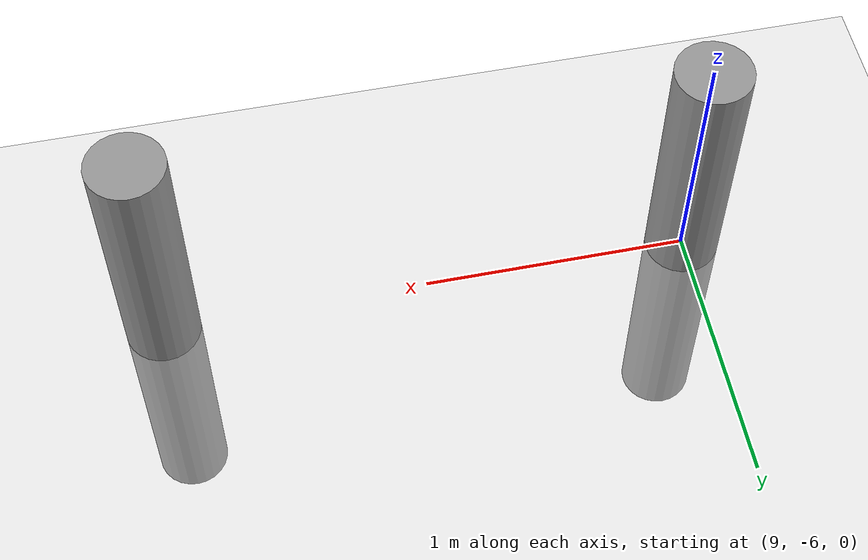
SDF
<sdf version="1.6">
 <world name="default">
  <model name="ground_plane">
   <static>1</static>
   <link name="link">
    <collision name="collision">
     <geometry><plane><normal>0 0 1</normal><size>100 100</size></plane></geometry>
     <surface><friction><ode><mu>100</mu><mu2>50</mu2></ode></friction></surface>
    </collision>
    <visual name="visual">
     <cast_shadows>0</cast_shadows>
     <geometry><plane><normal>0 0 1</normal><size>100 100</size></plane></geometry>
     <material>
      <script><uri>file://media/materials/scripts/gazebo.material</uri><name>Gazebo/Grey</name></script>
     </material>
    </visual>
   </link>
  </model>
  <model name="my_cylinder014_clone_45">
   <pose>11 -6 0 0 -0 0</pose>
   <link name="my_cylinder014::link">
    <inertial>
     <mass>1</mass>
     <inertia><ixx>0.145833</ixx><ixy>0</ixy><ixz>0</ixz><iyy>0.145833</iyy><iyz>0</iyz><izz>0.125</izz></inertia>
    </inertial>
    <visual name="visual">
     <geometry><cylinder><radius>0.14</radius><length>2</length></cylinder></geometry>
     <material>
      <script><name>Gazebo/Grey</name><uri>file://media/materials/scripts/gazebo.material</uri></script>
      <ambient>0.3 0.3 0.3 1</ambient>
      <diffuse>0.7 0.7 0.7 1</diffuse>
      <specular>1 0.01 0.01 1</specular>
      <emissive>0 0 0 1</emissive>
      <shader type="vertex"><normal_map>__default__</normal_map></shader>
     </material>
    </visual>
    <collision name="collision">
     <geometry><cylinder><radius>0.14</radius><length>2</length></cylinder></geometry>
     <surface>
      <friction>
       <ode><mu>1</mu><mu2>1</mu2><fdir1>0 0 0</fdir1><slip1>0</slip1><slip2>0</slip2></ode>
       <torsional>
        <coefficient>1</coefficient>
        <patch_radius>0</patch_radius>
        <surface_radius>0</surface_radius>
        <use_patch_radius>1</use_patch_radius>
        <ode><slip>0</slip></ode>
       </torsional>
      </friction>
      <bounce><restitution_coefficient>0</restitution_coefficient><threshold>1e+06</threshold></bounce>
      <contact>
       <collide_without_contact>0</collide_without_contact>
       <collide_without_contact_bitmask>1</collide_without_contact_bitmask>
       <collide_bitmask>1</collide_bitmask>
       <ode>
        <soft_cfm>0</soft_cfm>
        <soft_erp>0.2</soft_erp>
        <kp>1e+13</kp>
        <kd>1</kd>
        <max_vel>0.01</max_vel>
        <min_depth>0</min_depth>
       </ode>
       <bullet>
        <split_impulse>1</split_impulse>
        <split_impulse_penetration_threshold>-0.01</split_impulse_penetration_threshold>
        <soft_cfm>0</soft_cfm>
        <soft_erp>0.2</soft_erp>
        <kp>1e+13</kp>
        <kd>1</kd>
       </bullet>
      </contact>
     </surface>
    </collision>
   </link>
   <static>1</static>
  </model>
  <model name="my_cylinder014_clone_44">
   <pose>9 -6 0 0 -0 0</pose>
   <link name="my_cylinder014::link">
    <inertial>
     <mass>1</mass>
     <inertia><ixx>0.145833</ixx><ixy>0</ixy><ixz>0</ixz><iyy>0.145833</iyy><iyz>0</iyz><izz>0.125</izz></inertia>
    </inertial>
    <visual name="visual">
     <geometry><cylinder><radius>0.14</radius><length>2</length></cylinder></geometry>
     <material>
      <script><name>Gazebo/Grey</name><uri>file://media/materials/scripts/gazebo.material</uri></script>
      <ambient>0.3 0.3 0.3 1</ambient>
      <diffuse>0.7 0.7 0.7 1</diffuse>
      <specular>1 0.01 0.01 1</specular>
      <emissive>0 0 0 1</emissive>
      <shader type="vertex"><normal_map>__default__</normal_map></shader>
     </material>
    </visual>
    <collision name="collision">
     <geometry><cylinder><radius>0.14</radius><length>2</length></cylinder></geometry>
     <surface>
      <friction>
       <ode><mu>1</mu><mu2>1</mu2><fdir1>0 0 0</fdir1><slip1>0</slip1><slip2>0</slip2></ode>
       <torsional>
        <coefficient>1</coefficient>
        <patch_radius>0</patch_radius>
        <surface_radius>0</surface_radius>
        <use_patch_radius>1</use_patch_radius>
        <ode><slip>0</slip></ode>
       </torsional>
      </friction>
      <bounce><restitution_coefficient>0</restitution_coefficient><threshold>1e+06</threshold></bounce>
      <contact>
       <collide_without_contact>0</collide_without_contact>
       <collide_without_contact_bitmask>1</collide_without_contact_bitmask>
       <collide_bitmask>1</collide_bitmask>
       <ode>
        <soft_cfm>0</soft_cfm>
        <soft_erp>0.2</soft_erp>
        <kp>1e+13</kp>
        <kd>1</kd>
        <max_vel>0.01</max_vel>
        <min_depth>0</min_depth>
       </ode>
       <bullet>
        <split_impulse>1</split_impulse>
        <split_impulse_penetration_threshold>-0.01</split_impulse_penetration_threshold>
        <soft_cfm>0</soft_cfm>
        <soft_erp>0.2</soft_erp>
        <kp>1e+13</kp>
        <kd>1</kd>
       </bullet>
      </contact>
     </surface>
    </collision>
   </link>
   <static>1</static>
  </model>
  <model name="my_cylinder014_clone_44">
   <pose>9 -6 0 0 -0 0</pose>
   <link name="my_cylinder014::link">
    <inertial>
     <mass>1</mass>
     <inertia><ixx>0.145833</ixx><ixy>0</ixy><ixz>0</ixz><iyy>0.145833</iyy><iyz>0</iyz><izz>0.125</izz></inertia>
    </inertial>
    <visual name="visual">
     <geometry><cylinder><radius>0.14</radius><length>2</length></cylinder></geometry>
     <material>
      <script><name>Gazebo/Grey</name><uri>file://media/materials/scripts/gazebo.material</uri></script>
      <ambient>0.3 0.3 0.3 1</ambient>
      <diffuse>0.7 0.7 0.7 1</diffuse>
      <specular>1 0.01 0.01 1</specular>
      <emissive>0 0 0 1</emissive>
      <shader type="vertex"><normal_map>__default__</normal_map></shader>
     </material>
    </visual>
    <collision name="collision">
     <geometry><cylinder><radius>0.14</radius><length>2</length></cylinder></geometry>
     <surface>
      <friction>
       <ode><mu>1</mu><mu2>1</mu2><fdir1>0 0 0</fdir1><slip1>0</slip1><slip2>0</slip2></ode>
       <torsional>
        <coefficient>1</coefficient>
        <patch_radius>0</patch_radius>
        <surface_radius>0</surface_radius>
        <use_patch_radius>1</use_patch_radius>
        <ode><slip>0</slip></ode>
       </torsional>
      </friction>
      <bounce><restitution_coefficient>0</restitution_coefficient><threshold>1e+06</threshold></bounce>
      <contact>
       <collide_without_contact>0</collide_without_contact>
       <collide_without_contact_bitmask>1</collide_without_contact_bitmask>
       <collide_bitmask>1</collide_bitmask>
       <ode>
        <soft_cfm>0</soft_cfm>
        <soft_erp>0.2</soft_erp>
        <kp>1e+13</kp>
        <kd>1</kd>
        <max_vel>0.01</max_vel>
        <min_depth>0</min_depth>
       </ode>
       <bullet>
        <split_impulse>1</split_impulse>
        <split_impulse_penetration_threshold>-0.01</split_impulse_penetration_threshold>
        <soft_cfm>0</soft_cfm>
        <soft_erp>0.2</soft_erp>
        <kp>1e+13</kp>
        <kd>1</kd>
       </bullet>
      </contact>
     </surface>
    </collision>
   </link>
   <static>1</static>
  </model>
 </world>
</sdf>
